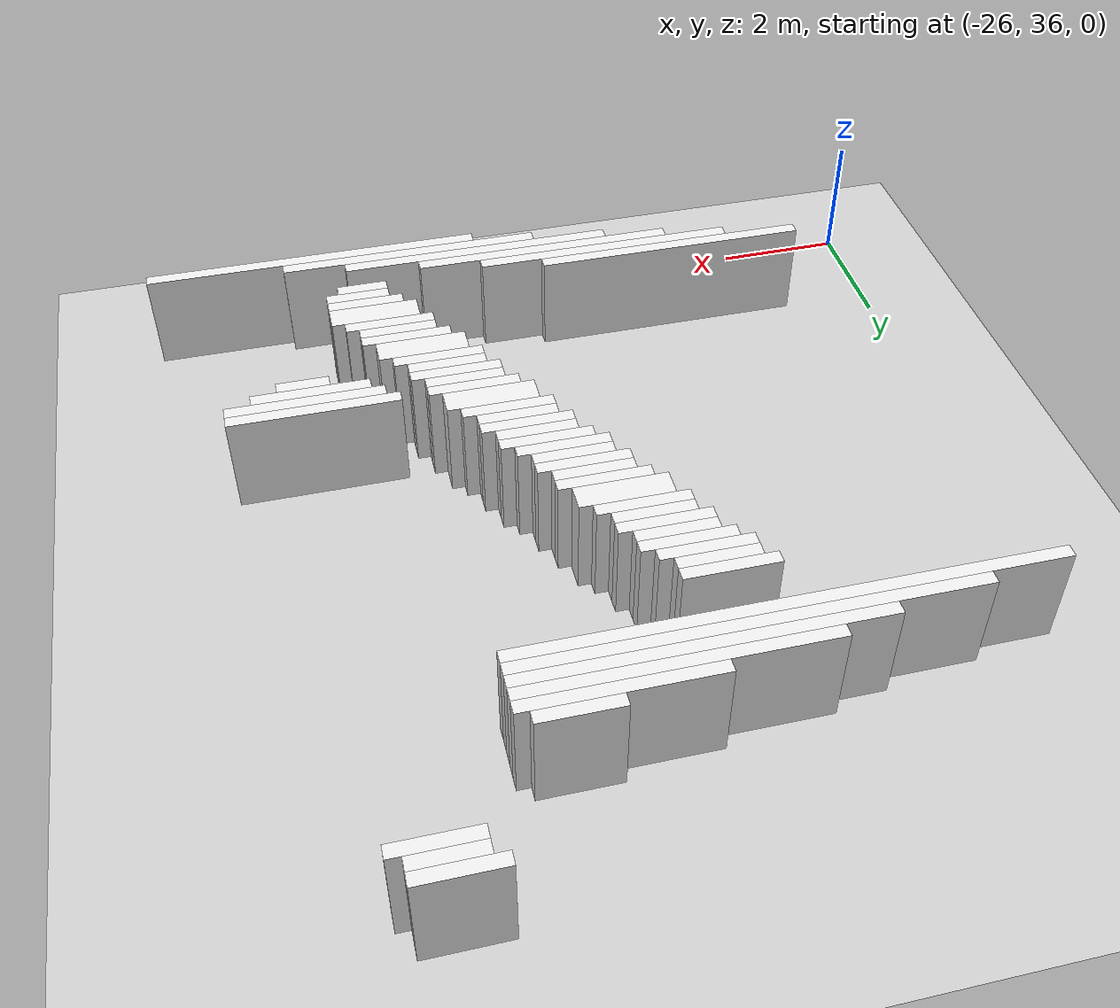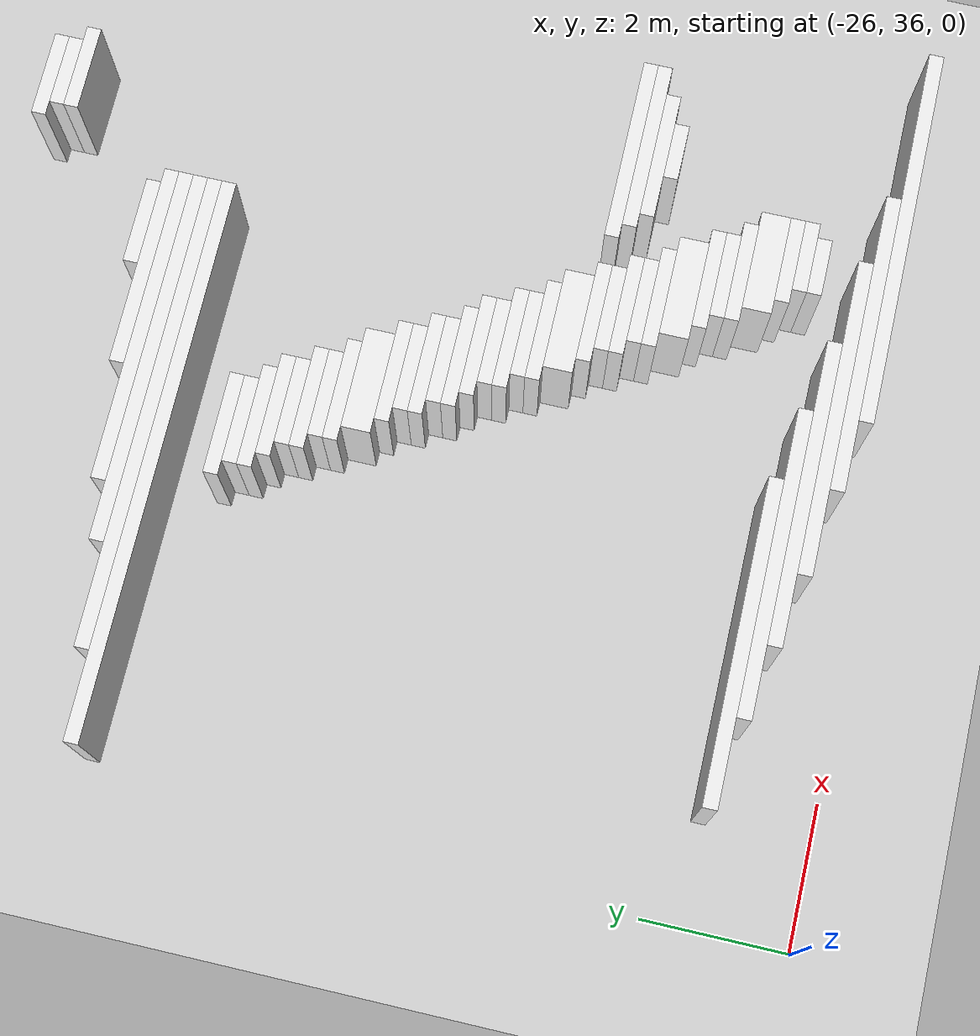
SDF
<sdf version="1.7">
 <world name="default">
  <model name="ground_plane">
   <static>1</static>
   <link name="link">
    <collision name="collision">
     <geometry><plane><normal>0 0 1</normal><size>120 120</size></plane></geometry>
    </collision>
    <visual name="visual">
     <geometry><plane><normal>0 0 1</normal><size>120 120</size></plane></geometry>
     <material>
      <script><uri>file://media/materials/scripts/gazebo.material</uri><name>Gazebo/Grey</name></script>
     </material>
    </visual>
   </link>
  </model>
  <model name="random_complex_01_model">
   <static>1</static>
   <link name="obs_3">
    <pose>-16.8000 48.3000 0.8000 0 0 0</pose>
    <collision name="obs_3_col"><geometry><box><size>1.2000 0.2000 1.6000</size></box></geometry></collision>
    <visual name="obs_3_vis">
     <geometry><box><size>1.2000 0.2000 1.6000</size></box></geometry>
     <material>
      <script><uri>file://media/materials/scripts/gazebo.material</uri><name>Gazebo/White</name></script>
     </material>
    </visual>
   </link>
   <link name="obs_10">
    <pose>-16.7000 48.1000 0.8000 0 0 0</pose>
    <collision name="obs_10_col"><geometry><box><size>1.0000 0.2000 1.6000</size></box></geometry></collision>
    <visual name="obs_10_vis">
     <geometry><box><size>1.0000 0.2000 1.6000</size></box></geometry>
     <material>
      <script><uri>file://media/materials/scripts/gazebo.material</uri><name>Gazebo/White</name></script>
     </material>
    </visual>
   </link>
   <link name="obs_17">
    <pose>-16.6000 47.9000 0.8000 0 0 0</pose>
    <collision name="obs_17_col"><geometry><box><size>1.2000 0.2000 1.6000</size></box></geometry></collision>
    <visual name="obs_17_vis">
     <geometry><box><size>1.2000 0.2000 1.6000</size></box></geometry>
     <material>
      <script><uri>file://media/materials/scripts/gazebo.material</uri><name>Gazebo/White</name></script>
     </material>
    </visual>
   </link>
   <link name="obs_65">
    <pose>-18.6000 46.5000 0.8000 0 0 0</pose>
    <collision name="obs_65_col"><geometry><box><size>1.2000 0.2000 1.6000</size></box></geometry></collision>
    <visual name="obs_65_vis">
     <geometry><box><size>1.2000 0.2000 1.6000</size></box></geometry>
     <material>
      <script><uri>file://media/materials/scripts/gazebo.material</uri><name>Gazebo/White</name></script>
     </material>
    </visual>
   </link>
   <link name="obs_72">
    <pose>-19.2000 46.3000 0.8000 0 0 0</pose>
    <collision name="obs_72_col"><geometry><box><size>2.8000 0.2000 1.6000</size></box></geometry></collision>
    <visual name="obs_72_vis">
     <geometry><box><size>2.8000 0.2000 1.6000</size></box></geometry>
     <material>
      <script><uri>file://media/materials/scripts/gazebo.material</uri><name>Gazebo/White</name></script>
     </material>
    </visual>
   </link>
   <link name="obs_82">
    <pose>-20.0000 46.1000 0.8000 0 0 0</pose>
    <collision name="obs_82_col"><geometry><box><size>4.4000 0.2000 1.6000</size></box></geometry></collision>
    <visual name="obs_82_vis">
     <geometry><box><size>4.4000 0.2000 1.6000</size></box></geometry>
     <material>
      <script><uri>file://media/materials/scripts/gazebo.material</uri><name>Gazebo/White</name></script>
     </material>
    </visual>
   </link>
   <link name="obs_92">
    <pose>-20.4000 45.9000 0.8000 0 0 0</pose>
    <collision name="obs_92_col"><geometry><box><size>5.2000 0.2000 1.6000</size></box></geometry></collision>
    <visual name="obs_92_vis">
     <geometry><box><size>5.2000 0.2000 1.6000</size></box></geometry>
     <material>
      <script><uri>file://media/materials/scripts/gazebo.material</uri><name>Gazebo/White</name></script>
     </material>
    </visual>
   </link>
   <link name="obs_100">
    <pose>-21.1000 45.7000 0.8000 0 0 0</pose>
    <collision name="obs_100_col"><geometry><box><size>6.6000 0.2000 1.6000</size></box></geometry></collision>
    <visual name="obs_100_vis">
     <geometry><box><size>6.6000 0.2000 1.6000</size></box></geometry>
     <material>
      <script><uri>file://media/materials/scripts/gazebo.material</uri><name>Gazebo/White</name></script>
     </material>
    </visual>
   </link>
   <link name="obs_111">
    <pose>-21.7000 45.5000 0.8000 0 0 0</pose>
    <collision name="obs_111_col"><geometry><box><size>7.8000 0.2000 1.6000</size></box></geometry></collision>
    <visual name="obs_111_vis">
     <geometry><box><size>7.8000 0.2000 1.6000</size></box></geometry>
     <material>
      <script><uri>file://media/materials/scripts/gazebo.material</uri><name>Gazebo/White</name></script>
     </material>
    </visual>
   </link>
   <link name="obs_145">
    <pose>-21.1000 44.7000 0.8000 0 0 0</pose>
    <collision name="obs_145_col"><geometry><box><size>1.4000 0.2000 1.6000</size></box></geometry></collision>
    <visual name="obs_145_vis">
     <geometry><box><size>1.4000 0.2000 1.6000</size></box></geometry>
     <material>
      <script><uri>file://media/materials/scripts/gazebo.material</uri><name>Gazebo/White</name></script>
     </material>
    </visual>
   </link>
   <link name="obs_152">
    <pose>-21.0000 44.5000 0.8000 0 0 0</pose>
    <collision name="obs_152_col"><geometry><box><size>1.2000 0.2000 1.6000</size></box></geometry></collision>
    <visual name="obs_152_vis">
     <geometry><box><size>1.2000 0.2000 1.6000</size></box></geometry>
     <material>
      <script><uri>file://media/materials/scripts/gazebo.material</uri><name>Gazebo/White</name></script>
     </material>
    </visual>
   </link>
   <link name="obs_159">
    <pose>-20.9000 44.3000 0.8000 0 0 0</pose>
    <collision name="obs_159_col"><geometry><box><size>1.4000 0.2000 1.6000</size></box></geometry></collision>
    <visual name="obs_159_vis">
     <geometry><box><size>1.4000 0.2000 1.6000</size></box></geometry>
     <material>
      <script><uri>file://media/materials/scripts/gazebo.material</uri><name>Gazebo/White</name></script>
     </material>
    </visual>
   </link>
   <link name="obs_165">
    <pose>-20.7000 44.1000 0.8000 0 0 0</pose>
    <collision name="obs_165_col"><geometry><box><size>1.4000 0.2000 1.6000</size></box></geometry></collision>
    <visual name="obs_165_vis">
     <geometry><box><size>1.4000 0.2000 1.6000</size></box></geometry>
     <material>
      <script><uri>file://media/materials/scripts/gazebo.material</uri><name>Gazebo/White</name></script>
     </material>
    </visual>
   </link>
   <link name="obs_173">
    <pose>-20.6000 43.9000 0.8000 0 0 0</pose>
    <collision name="obs_173_col"><geometry><box><size>1.2000 0.2000 1.6000</size></box></geometry></collision>
    <visual name="obs_173_vis">
     <geometry><box><size>1.2000 0.2000 1.6000</size></box></geometry>
     <material>
      <script><uri>file://media/materials/scripts/gazebo.material</uri><name>Gazebo/White</name></script>
     </material>
    </visual>
   </link>
   <link name="obs_181">
    <pose>-20.5000 43.7000 0.8000 0 0 0</pose>
    <collision name="obs_181_col"><geometry><box><size>1.4000 0.2000 1.6000</size></box></geometry></collision>
    <visual name="obs_181_vis">
     <geometry><box><size>1.4000 0.2000 1.6000</size></box></geometry>
     <material>
      <script><uri>file://media/materials/scripts/gazebo.material</uri><name>Gazebo/White</name></script>
     </material>
    </visual>
   </link>
   <link name="obs_188">
    <pose>-20.4000 43.5000 0.8000 0 0 0</pose>
    <collision name="obs_188_col"><geometry><box><size>1.2000 0.2000 1.6000</size></box></geometry></collision>
    <visual name="obs_188_vis">
     <geometry><box><size>1.2000 0.2000 1.6000</size></box></geometry>
     <material>
      <script><uri>file://media/materials/scripts/gazebo.material</uri><name>Gazebo/White</name></script>
     </material>
    </visual>
   </link>
   <link name="obs_195">
    <pose>-20.3000 43.3000 0.8000 0 0 0</pose>
    <collision name="obs_195_col"><geometry><box><size>1.4000 0.2000 1.6000</size></box></geometry></collision>
    <visual name="obs_195_vis">
     <geometry><box><size>1.4000 0.2000 1.6000</size></box></geometry>
     <material>
      <script><uri>file://media/materials/scripts/gazebo.material</uri><name>Gazebo/White</name></script>
     </material>
    </visual>
   </link>
   <link name="obs_204">
    <pose>-20.1000 43.0000 0.8000 0 0 0</pose>
    <collision name="obs_204_col"><geometry><box><size>1.4000 0.4000 1.6000</size></box></geometry></collision>
    <visual name="obs_204_vis">
     <geometry><box><size>1.4000 0.4000 1.6000</size></box></geometry>
     <material>
      <script><uri>file://media/materials/scripts/gazebo.material</uri><name>Gazebo/White</name></script>
     </material>
    </visual>
   </link>
   <link name="obs_214">
    <pose>-19.9000 42.7000 0.8000 0 0 0</pose>
    <collision name="obs_214_col"><geometry><box><size>1.4000 0.2000 1.6000</size></box></geometry></collision>
    <visual name="obs_214_vis">
     <geometry><box><size>1.4000 0.2000 1.6000</size></box></geometry>
     <material>
      <script><uri>file://media/materials/scripts/gazebo.material</uri><name>Gazebo/White</name></script>
     </material>
    </visual>
   </link>
   <link name="obs_220">
    <pose>-19.8000 42.5000 0.8000 0 0 0</pose>
    <collision name="obs_220_col"><geometry><box><size>1.2000 0.2000 1.6000</size></box></geometry></collision>
    <visual name="obs_220_vis">
     <geometry><box><size>1.2000 0.2000 1.6000</size></box></geometry>
     <material>
      <script><uri>file://media/materials/scripts/gazebo.material</uri><name>Gazebo/White</name></script>
     </material>
    </visual>
   </link>
   <link name="obs_226">
    <pose>-19.7000 42.3000 0.8000 0 0 0</pose>
    <collision name="obs_226_col"><geometry><box><size>1.4000 0.2000 1.6000</size></box></geometry></collision>
    <visual name="obs_226_vis">
     <geometry><box><size>1.4000 0.2000 1.6000</size></box></geometry>
     <material>
      <script><uri>file://media/materials/scripts/gazebo.material</uri><name>Gazebo/White</name></script>
     </material>
    </visual>
   </link>
   <link name="obs_232">
    <pose>-19.6000 42.1000 0.8000 0 0 0</pose>
    <collision name="obs_232_col"><geometry><box><size>1.2000 0.2000 1.6000</size></box></geometry></collision>
    <visual name="obs_232_vis">
     <geometry><box><size>1.2000 0.2000 1.6000</size></box></geometry>
     <material>
      <script><uri>file://media/materials/scripts/gazebo.material</uri><name>Gazebo/White</name></script>
     </material>
    </visual>
   </link>
   <link name="obs_239">
    <pose>-19.5000 41.9000 0.8000 0 0 0</pose>
    <collision name="obs_239_col"><geometry><box><size>1.4000 0.2000 1.6000</size></box></geometry></collision>
    <visual name="obs_239_vis">
     <geometry><box><size>1.4000 0.2000 1.6000</size></box></geometry>
     <material>
      <script><uri>file://media/materials/scripts/gazebo.material</uri><name>Gazebo/White</name></script>
     </material>
    </visual>
   </link>
   <link name="obs_243">
    <pose>-19.3000 41.7000 0.8000 0 0 0</pose>
    <collision name="obs_243_col"><geometry><box><size>1.4000 0.2000 1.6000</size></box></geometry></collision>
    <visual name="obs_243_vis">
     <geometry><box><size>1.4000 0.2000 1.6000</size></box></geometry>
     <material>
      <script><uri>file://media/materials/scripts/gazebo.material</uri><name>Gazebo/White</name></script>
     </material>
    </visual>
   </link>
   <link name="obs_251">
    <pose>-19.2000 41.5000 0.8000 0 0 0</pose>
    <collision name="obs_251_col"><geometry><box><size>1.2000 0.2000 1.6000</size></box></geometry></collision>
    <visual name="obs_251_vis">
     <geometry><box><size>1.2000 0.2000 1.6000</size></box></geometry>
     <material>
      <script><uri>file://media/materials/scripts/gazebo.material</uri><name>Gazebo/White</name></script>
     </material>
    </visual>
   </link>
   <link name="obs_257">
    <pose>-19.1000 41.3000 0.8000 0 0 0</pose>
    <collision name="obs_257_col"><geometry><box><size>1.4000 0.2000 1.6000</size></box></geometry></collision>
    <visual name="obs_257_vis">
     <geometry><box><size>1.4000 0.2000 1.6000</size></box></geometry>
     <material>
      <script><uri>file://media/materials/scripts/gazebo.material</uri><name>Gazebo/White</name></script>
     </material>
    </visual>
   </link>
   <link name="obs_266">
    <pose>-19.0000 41.1000 0.8000 0 0 0</pose>
    <collision name="obs_266_col"><geometry><box><size>1.2000 0.2000 1.6000</size></box></geometry></collision>
    <visual name="obs_266_vis">
     <geometry><box><size>1.2000 0.2000 1.6000</size></box></geometry>
     <material>
      <script><uri>file://media/materials/scripts/gazebo.material</uri><name>Gazebo/White</name></script>
     </material>
    </visual>
   </link>
   <link name="obs_273">
    <pose>-18.9000 40.9000 0.8000 0 0 0</pose>
    <collision name="obs_273_col"><geometry><box><size>1.4000 0.2000 1.6000</size></box></geometry></collision>
    <visual name="obs_273_vis">
     <geometry><box><size>1.4000 0.2000 1.6000</size></box></geometry>
     <material>
      <script><uri>file://media/materials/scripts/gazebo.material</uri><name>Gazebo/White</name></script>
     </material>
    </visual>
   </link>
   <link name="obs_284">
    <pose>-18.7000 40.6000 0.8000 0 0 0</pose>
    <collision name="obs_284_col"><geometry><box><size>1.4000 0.4000 1.6000</size></box></geometry></collision>
    <visual name="obs_284_vis">
     <geometry><box><size>1.4000 0.4000 1.6000</size></box></geometry>
     <material>
      <script><uri>file://media/materials/scripts/gazebo.material</uri><name>Gazebo/White</name></script>
     </material>
    </visual>
   </link>
   <link name="obs_292">
    <pose>-18.5000 40.3000 0.8000 0 0 0</pose>
    <collision name="obs_292_col"><geometry><box><size>1.4000 0.2000 1.6000</size></box></geometry></collision>
    <visual name="obs_292_vis">
     <geometry><box><size>1.4000 0.2000 1.6000</size></box></geometry>
     <material>
      <script><uri>file://media/materials/scripts/gazebo.material</uri><name>Gazebo/White</name></script>
     </material>
    </visual>
   </link>
   <link name="obs_293">
    <pose>-16.1000 40.3000 0.8000 0 0 0</pose>
    <collision name="obs_293_col"><geometry><box><size>2.6000 0.2000 1.6000</size></box></geometry></collision>
    <visual name="obs_293_vis">
     <geometry><box><size>2.6000 0.2000 1.6000</size></box></geometry>
     <material>
      <script><uri>file://media/materials/scripts/gazebo.material</uri><name>Gazebo/White</name></script>
     </material>
    </visual>
   </link>
   <link name="obs_296">
    <pose>-18.4000 40.1000 0.8000 0 0 0</pose>
    <collision name="obs_296_col"><geometry><box><size>1.2000 0.2000 1.6000</size></box></geometry></collision>
    <visual name="obs_296_vis">
     <geometry><box><size>1.2000 0.2000 1.6000</size></box></geometry>
     <material>
      <script><uri>file://media/materials/scripts/gazebo.material</uri><name>Gazebo/White</name></script>
     </material>
    </visual>
   </link>
   <link name="obs_297">
    <pose>-16.0000 40.1000 0.8000 0 0 0</pose>
    <collision name="obs_297_col"><geometry><box><size>2.4000 0.2000 1.6000</size></box></geometry></collision>
    <visual name="obs_297_vis">
     <geometry><box><size>2.4000 0.2000 1.6000</size></box></geometry>
     <material>
      <script><uri>file://media/materials/scripts/gazebo.material</uri><name>Gazebo/White</name></script>
     </material>
    </visual>
   </link>
   <link name="obs_301">
    <pose>-18.3000 39.9000 0.8000 0 0 0</pose>
    <collision name="obs_301_col"><geometry><box><size>1.4000 0.2000 1.6000</size></box></geometry></collision>
    <visual name="obs_301_vis">
     <geometry><box><size>1.4000 0.2000 1.6000</size></box></geometry>
     <material>
      <script><uri>file://media/materials/scripts/gazebo.material</uri><name>Gazebo/White</name></script>
     </material>
    </visual>
   </link>
   <link name="obs_302">
    <pose>-16.1000 39.9000 0.8000 0 0 0</pose>
    <collision name="obs_302_col"><geometry><box><size>1.8000 0.2000 1.6000</size></box></geometry></collision>
    <visual name="obs_302_vis">
     <geometry><box><size>1.8000 0.2000 1.6000</size></box></geometry>
     <material>
      <script><uri>file://media/materials/scripts/gazebo.material</uri><name>Gazebo/White</name></script>
     </material>
    </visual>
   </link>
   <link name="obs_305">
    <pose>-18.2000 39.7000 0.8000 0 0 0</pose>
    <collision name="obs_305_col"><geometry><box><size>1.2000 0.2000 1.6000</size></box></geometry></collision>
    <visual name="obs_305_vis">
     <geometry><box><size>1.2000 0.2000 1.6000</size></box></geometry>
     <material>
      <script><uri>file://media/materials/scripts/gazebo.material</uri><name>Gazebo/White</name></script>
     </material>
    </visual>
   </link>
   <link name="obs_306">
    <pose>-16.0000 39.7000 0.8000 0 0 0</pose>
    <collision name="obs_306_col"><geometry><box><size>0.8000 0.2000 1.6000</size></box></geometry></collision>
    <visual name="obs_306_vis">
     <geometry><box><size>0.8000 0.2000 1.6000</size></box></geometry>
     <material>
      <script><uri>file://media/materials/scripts/gazebo.material</uri><name>Gazebo/White</name></script>
     </material>
    </visual>
   </link>
   <link name="obs_309">
    <pose>-18.1000 39.5000 0.8000 0 0 0</pose>
    <collision name="obs_309_col"><geometry><box><size>1.4000 0.2000 1.6000</size></box></geometry></collision>
    <visual name="obs_309_vis">
     <geometry><box><size>1.4000 0.2000 1.6000</size></box></geometry>
     <material>
      <script><uri>file://media/materials/scripts/gazebo.material</uri><name>Gazebo/White</name></script>
     </material>
    </visual>
   </link>
   <link name="obs_314">
    <pose>-17.9000 39.2000 0.8000 0 0 0</pose>
    <collision name="obs_314_col"><geometry><box><size>1.4000 0.4000 1.6000</size></box></geometry></collision>
    <visual name="obs_314_vis">
     <geometry><box><size>1.4000 0.4000 1.6000</size></box></geometry>
     <material>
      <script><uri>file://media/materials/scripts/gazebo.material</uri><name>Gazebo/White</name></script>
     </material>
    </visual>
   </link>
   <link name="obs_316">
    <pose>-17.7000 38.9000 0.8000 0 0 0</pose>
    <collision name="obs_316_col"><geometry><box><size>1.4000 0.2000 1.6000</size></box></geometry></collision>
    <visual name="obs_316_vis">
     <geometry><box><size>1.4000 0.2000 1.6000</size></box></geometry>
     <material>
      <script><uri>file://media/materials/scripts/gazebo.material</uri><name>Gazebo/White</name></script>
     </material>
    </visual>
   </link>
   <link name="obs_318">
    <pose>-17.6000 38.7000 0.8000 0 0 0</pose>
    <collision name="obs_318_col"><geometry><box><size>1.2000 0.2000 1.6000</size></box></geometry></collision>
    <visual name="obs_318_vis">
     <geometry><box><size>1.2000 0.2000 1.6000</size></box></geometry>
     <material>
      <script><uri>file://media/materials/scripts/gazebo.material</uri><name>Gazebo/White</name></script>
     </material>
    </visual>
   </link>
   <link name="obs_322">
    <pose>-17.5000 38.5000 0.8000 0 0 0</pose>
    <collision name="obs_322_col"><geometry><box><size>1.4000 0.2000 1.6000</size></box></geometry></collision>
    <visual name="obs_322_vis">
     <geometry><box><size>1.4000 0.2000 1.6000</size></box></geometry>
     <material>
      <script><uri>file://media/materials/scripts/gazebo.material</uri><name>Gazebo/White</name></script>
     </material>
    </visual>
   </link>
   <link name="obs_329">
    <pose>-17.3000 38.2000 0.8000 0 0 0</pose>
    <collision name="obs_329_col"><geometry><box><size>1.4000 0.4000 1.6000</size></box></geometry></collision>
    <visual name="obs_329_vis">
     <geometry><box><size>1.4000 0.4000 1.6000</size></box></geometry>
     <material>
      <script><uri>file://media/materials/scripts/gazebo.material</uri><name>Gazebo/White</name></script>
     </material>
    </visual>
   </link>
   <link name="obs_341">
    <pose>-17.2000 37.9000 0.8000 0 0 0</pose>
    <collision name="obs_341_col"><geometry><box><size>1.2000 0.2000 1.6000</size></box></geometry></collision>
    <visual name="obs_341_vis">
     <geometry><box><size>1.2000 0.2000 1.6000</size></box></geometry>
     <material>
      <script><uri>file://media/materials/scripts/gazebo.material</uri><name>Gazebo/White</name></script>
     </material>
    </visual>
   </link>
   <link name="obs_346">
    <pose>-17.1000 37.7000 0.8000 0 0 0</pose>
    <collision name="obs_346_col"><geometry><box><size>1.0000 0.2000 1.6000</size></box></geometry></collision>
    <visual name="obs_346_vis">
     <geometry><box><size>1.0000 0.2000 1.6000</size></box></geometry>
     <material>
      <script><uri>file://media/materials/scripts/gazebo.material</uri><name>Gazebo/White</name></script>
     </material>
    </visual>
   </link>
   <link name="obs_354">
    <pose>-22.4000 37.5000 0.8000 0 0 0</pose>
    <collision name="obs_354_col"><geometry><box><size>4.4000 0.2000 1.6000</size></box></geometry></collision>
    <visual name="obs_354_vis">
     <geometry><box><size>4.4000 0.2000 1.6000</size></box></geometry>
     <material>
      <script><uri>file://media/materials/scripts/gazebo.material</uri><name>Gazebo/White</name></script>
     </material>
    </visual>
   </link>
   <link name="obs_355">
    <pose>-17.2000 37.5000 0.8000 0 0 0</pose>
    <collision name="obs_355_col"><geometry><box><size>0.8000 0.2000 1.6000</size></box></geometry></collision>
    <visual name="obs_355_vis">
     <geometry><box><size>0.8000 0.2000 1.6000</size></box></geometry>
     <material>
      <script><uri>file://media/materials/scripts/gazebo.material</uri><name>Gazebo/White</name></script>
     </material>
    </visual>
   </link>
   <link name="obs_362">
    <pose>-21.3000 37.3000 0.8000 0 0 0</pose>
    <collision name="obs_362_col"><geometry><box><size>4.2000 0.2000 1.6000</size></box></geometry></collision>
    <visual name="obs_362_vis">
     <geometry><box><size>4.2000 0.2000 1.6000</size></box></geometry>
     <material>
      <script><uri>file://media/materials/scripts/gazebo.material</uri><name>Gazebo/White</name></script>
     </material>
    </visual>
   </link>
   <link name="obs_368">
    <pose>-20.3000 37.1000 0.8000 0 0 0</pose>
    <collision name="obs_368_col"><geometry><box><size>4.2000 0.2000 1.6000</size></box></geometry></collision>
    <visual name="obs_368_vis">
     <geometry><box><size>4.2000 0.2000 1.6000</size></box></geometry>
     <material>
      <script><uri>file://media/materials/scripts/gazebo.material</uri><name>Gazebo/White</name></script>
     </material>
    </visual>
   </link>
   <link name="obs_374">
    <pose>-19.2000 36.9000 0.8000 0 0 0</pose>
    <collision name="obs_374_col"><geometry><box><size>4.4000 0.2000 1.6000</size></box></geometry></collision>
    <visual name="obs_374_vis">
     <geometry><box><size>4.4000 0.2000 1.6000</size></box></geometry>
     <material>
      <script><uri>file://media/materials/scripts/gazebo.material</uri><name>Gazebo/White</name></script>
     </material>
    </visual>
   </link>
   <link name="obs_380">
    <pose>-18.1000 36.7000 0.8000 0 0 0</pose>
    <collision name="obs_380_col"><geometry><box><size>4.2000 0.2000 1.6000</size></box></geometry></collision>
    <visual name="obs_380_vis">
     <geometry><box><size>4.2000 0.2000 1.6000</size></box></geometry>
     <material>
      <script><uri>file://media/materials/scripts/gazebo.material</uri><name>Gazebo/White</name></script>
     </material>
    </visual>
   </link>
   <link name="obs_388">
    <pose>-16.5000 36.5000 0.8000 0 0 0</pose>
    <collision name="obs_388_col"><geometry><box><size>5.4000 0.2000 1.6000</size></box></geometry></collision>
    <visual name="obs_388_vis">
     <geometry><box><size>5.4000 0.2000 1.6000</size></box></geometry>
     <material>
      <script><uri>file://media/materials/scripts/gazebo.material</uri><name>Gazebo/White</name></script>
     </material>
    </visual>
   </link>
  </model>
 </world>
</sdf>
